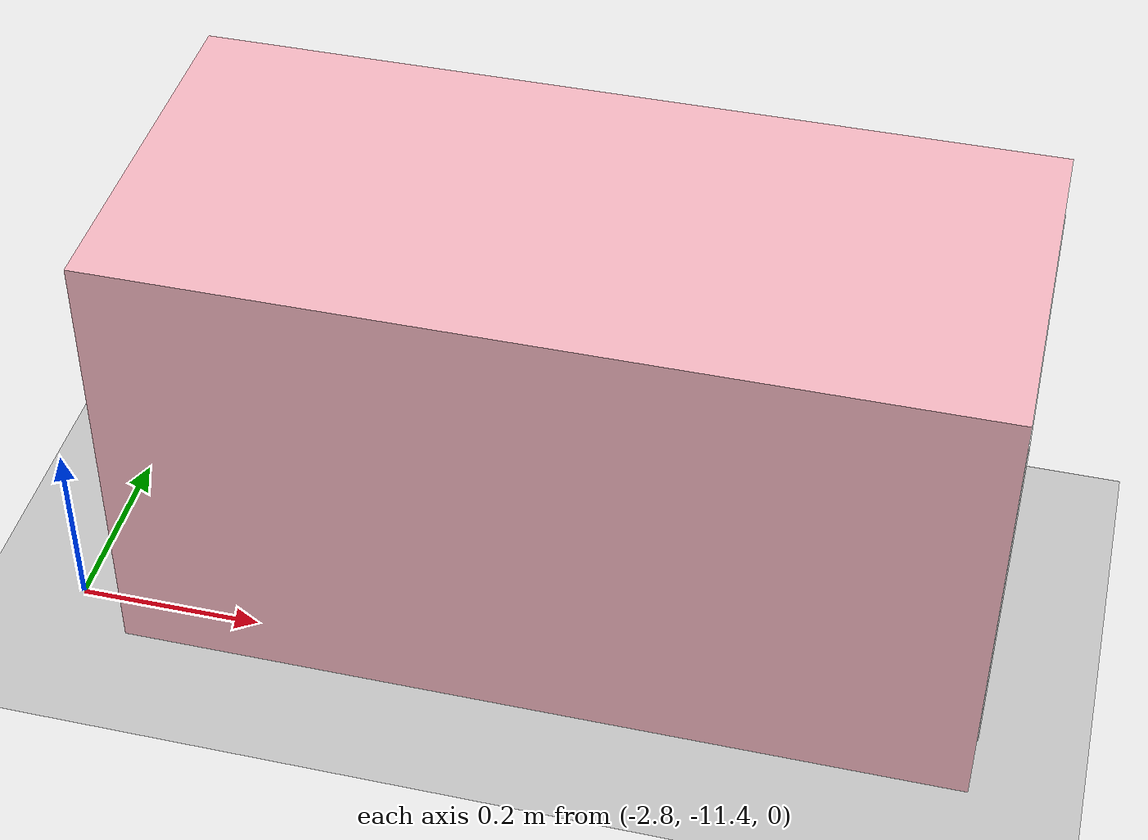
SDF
<sdf version="1.9">
 <world name="pig_pen_16units_world">
  <model name="ground_plane">
   <static>true</static>
   <link name="link">
    <collision name="collision">
     <geometry><plane><normal>0 0 1</normal><size>30 30</size></plane></geometry>
     <surface><friction><ode><mu>1.0</mu><mu2>1.0</mu2></ode></friction></surface>
    </collision>
    <visual name="visual">
     <geometry><plane><normal>0 0 1</normal><size>30 30</size></plane></geometry>
     <material>
      <ambient>0.8 0.8 0.8 1</ambient>
      <diffuse>0.8 0.8 0.8 1</diffuse>
      <specular>0.2 0.2 0.2 1</specular>
     </material>
    </visual>
   </link>
  </model>
  <include><uri>model://farm_pig</uri><name>pig2_b</name><pose>-2.275 -11.265 0.27 0 0 0</pose></include>
 </world>
</sdf>
